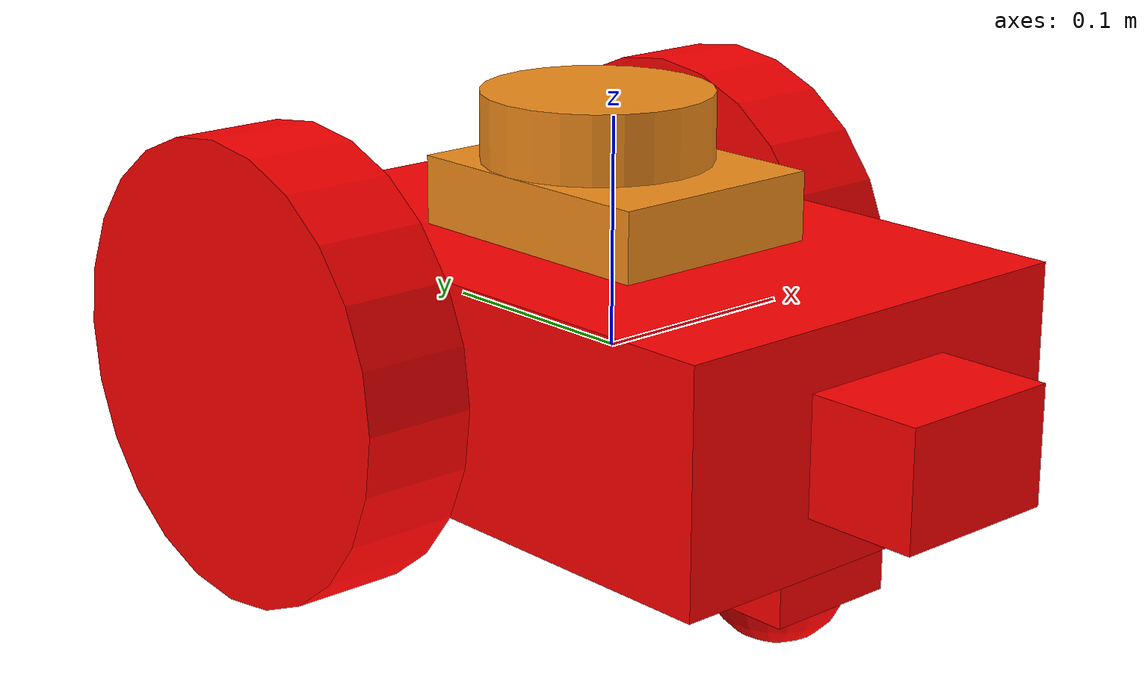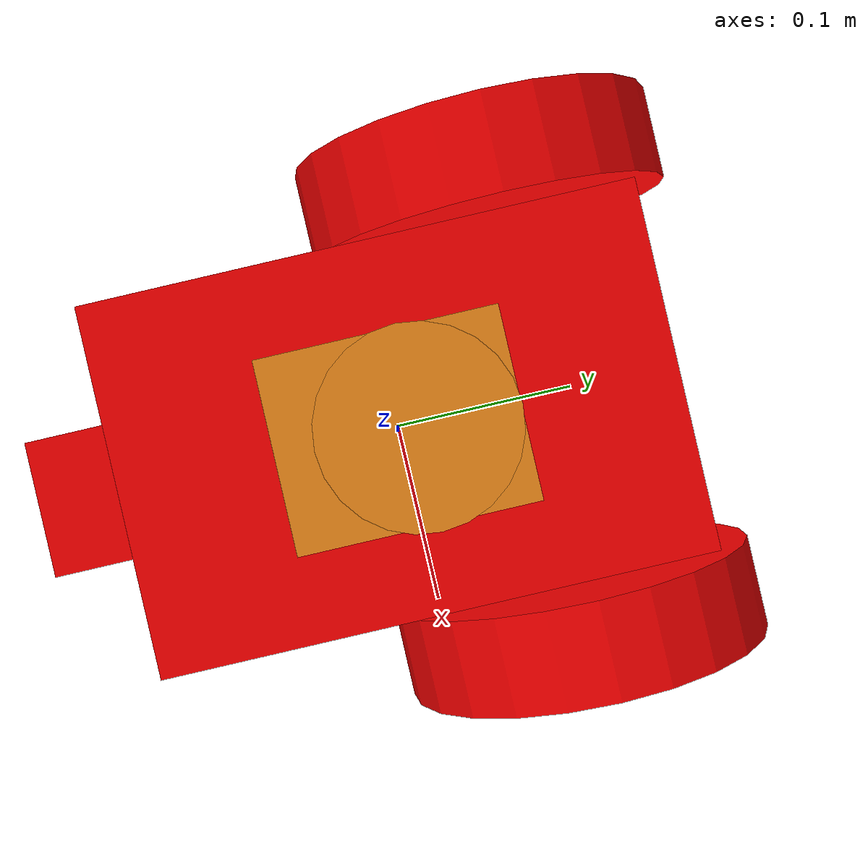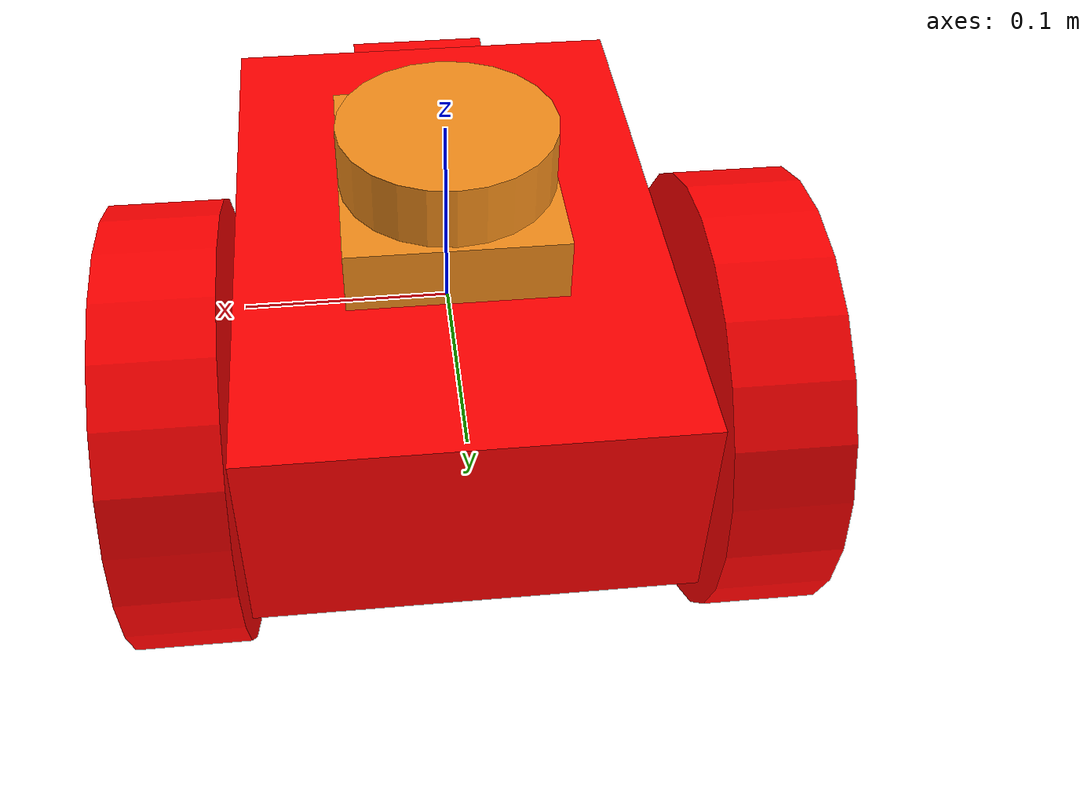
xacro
<?xml version="1.0"?>

<robot xmlns:xacro="http://www.ros.org/wiki/xacro" name="robot">
    <!--xacro:include filename="/home/el-shamy/Desktop/task/robo/src/robo_description/URDF/material.xacro"/-->

    <link name="base">
        <visual name="base_visual">
            <origin xyz="0.0 0.0 0.0" rpy="0.0 0.0 0.0"/>
            <geometry>
                <box size="0.2 0.3 0.1"/>
            </geometry>
            <material name="PLA_yellow">
                <color rgba="1.0 0.0 0.0 1.0"/>
                <texture filename=""/>
            </material>
        </visual>
        <collision>
            <origin xyz="0.0 0.0 0.0" rpy="0.0 0.0 0.0"/>
            <geometry>
                <box size="0.2 0.3 0.1"/>
            </geometry>
        </collision>
    </link>
    <link name="wheel_L">

        <visual name="wheel_L_visual">
            <origin xyz="0.0 0.0 0.0" rpy="0.0 0.0 0.0"/>
            <geometry>
                <cylinder radius="0.1" length="0.05"/>
            </geometry>
            <material name="rubber">
                <color rgba="1.0 0.0 0.0 1.0"/>
                <texture filename=""/>
            </material>
        </visual>
        <collision>
            <origin xyz="0.0 0.0 0.0" rpy="0.0 0.0 0.0"/>
            <geometry>
                <cylinder radius="0.1" length="0.05"/>
            </geometry>
        </collision>
    </link>
    <link name="wheel_R">

        <visual name="wheel_R_visual">
            <origin xyz="0.0 0.0 0.0" rpy="0.0 0.0 0.0"/>
            <geometry>
                <cylinder radius="0.1" length="0.05"/>
            </geometry>
            <material name="rubber">
                <color rgba="1.0 0.0 0.0 1.0"/>
                <texture filename=""/>
            </material>
        </visual>
        <collision>
            <origin xyz="0.0 0.0 0.0" rpy="0.0 0.0 0.0"/>
            <geometry>
                <cylinder radius="0.1" length="0.05"/>
            </geometry>
        </collision>
    </link>
    <link name="holder">

        <visual name="holder_visual">
            <origin xyz="0.0 0.0 0.00" rpy="0.0 0.0 0.0"/>
            <geometry>
                <box size="0.06 0.06 0.03"/>
            </geometry>
            <material name="PLA">
                <color rgba="1.0 0.0 0.0 1.0"/>
                <texture filename=""/>
            </material>
        </visual>
        <collision>
            <origin xyz="0.0 0.0 0.00" rpy="0.0 0.0 0.0"/>
            <geometry>
                <box size="0.06 0.06 0.03"/>
            </geometry>
        </collision>
    </link>
    <link name="caster_wheel">

        <visual name="caster_wheel_visual">
            <origin xyz="0.0 0.0 0.0" rpy="0.0 0.0 0.0"/>
            <geometry>
                <sphere radius="0.03"/>
            </geometry>
            <material name="metal">
                <color rgba="1.0 0.0 0.0 1.0"/>
                <texture filename=""/>
            </material>
        </visual>
        <collision>
            <origin xyz="0.0 0.0 0.0" rpy="0.0 0.0 0.0"/>
            <geometry>
                <sphere radius="0.03"/>
            </geometry>
        </collision>
    </link>

    <link name="camera">

        <visual name="camera_visual">
            <origin xyz="0.0 0.0 0.0" rpy="0.0 0.0 0.0"/>
            <geometry>
                <box size="0.075 0.05 0.05"/>
            </geometry>
            <material name="PLA_blue">
                <color rgba="1.0 0.0 0.0 1.0"/>
                <texture filename=""/>
            </material>
        </visual>
        <collision>
            <origin xyz="0.0 0.0 0.0" rpy="0.0 0.0 0.0"/>
            <geometry>
                <box size="0.0 0.0 0.0"/>
            </geometry>
        </collision>
    </link>
    <link name="lidar">

        <visual name="lidar_visual">
            <origin xyz="0.0 0.0 0.0" rpy="0.0 0.0 0.0"/>
            <geometry>
                <cylinder radius="0.05" length="0.05"/>
            </geometry>
            <material name="PLA_orange">
            </material>
        </visual>
        <collision>
            <origin xyz="0.0 0.0 1.0" rpy="0.0 0.0 0.0"/>
            <geometry>
                <cylinder radius="0.05" length="0.05"/>
            </geometry>
        </collision>
    </link>

    <link name="lidar_base">
        <visual name="lidar_base_visual">
            <origin xyz="0.0 0.0 0.0" rpy="0.0 0.0 0.0"/>
            <geometry>
                <box size="0.1 0.125 0.03"/>
            </geometry>
            <material name="PLA_orange">
            </material>
        </visual>
        <collision>
            <origin xyz="0.0 0.0 0.0" rpy="0.0 0.0 0.0"/>
            <geometry>
                <box size="0.1 0.125 0.03"/>
            </geometry>
        </collision>
    </link>
    <joint name="lidar" type="fixed">
        <origin xyz="0.0 0.01 0.02" rpy="0.0 0.0 0.0"/>
        <parent link="lidar_base"/>
        <child link="lidar"/>
        <axis xyz="0.0 0.0 0.0"/>
        <limit lower="0.0" upper="0.0" effort="0.0" velocity="0.0"/>
    </joint>

    <joint name="lidar_base" type="fixed">
        <origin xyz="0.0 0.0 0.065" rpy="0.0 0.0 0.0"/>
        <parent link="base"/>
        <child link="lidar_base"/>
        <axis xyz="0.0 0.0 0.0"/>
        <limit lower="0.0" upper="0.0" effort="0.0" velocity="0.0"/>
    </joint>

    <joint name="camera" type="fixed">
        <origin xyz="0.0 -0.175 0.0" rpy="0.0 0.0 0.0"/>
        <parent link="base"/>
        <child link="camera"/>
        <axis xyz="0.0 0.0 0.0"/>
        <limit lower="0.0" upper="0.0" effort="0.0" velocity="0.0"/>
    </joint>

    <joint name="L_wheel" type="revolute">
        <origin xyz="0.125 0.075 0.0" rpy="0.0 1.57 0.0"/>
        <parent link="base"/>
        <child link="wheel_L"/>
        <axis xyz="1 0.0 0.0"/>
        <limit lower="0.0" upper="0.0" effort="0.0" velocity="0.0"/>
    </joint>
    <joint name="R_wheel" type="revolute">
        <origin xyz="-0.125 0.075 0.0" rpy="0.0 1.57 0.0"/>
        <parent link="base"/>
        <child link="wheel_R"/>
        <axis xyz="1 0.0 0.0"/>
        <limit lower="0.0" upper="0.0" effort="0.0" velocity="0.0"/>
    </joint>
    <joint name="caster_holder" type="fixed">
        <origin xyz="0.0 -0.1 -0.065" rpy="0.0 0.0 0.0"/>
        <parent link="base"/>
        <child link="holder"/>
        <axis xyz="0.0 0.0 0.0"/>
        <limit lower="0.0" upper="0.0" effort="0.0" velocity="0.0"/>
    </joint>
    <joint name="caster_wheel" type="continuous">
        <origin xyz="0.0 0.0 -0.0075" rpy="0.0 0.0 0.0"/>
        <parent link="holder"/>
        <child link="caster_wheel"/>
        <axis xyz="0.0 0.0 0.0"/>
        <limit lower="0.0" upper="0.0" effort="0.0" velocity="0.0"/>
    </joint>

</robot>
